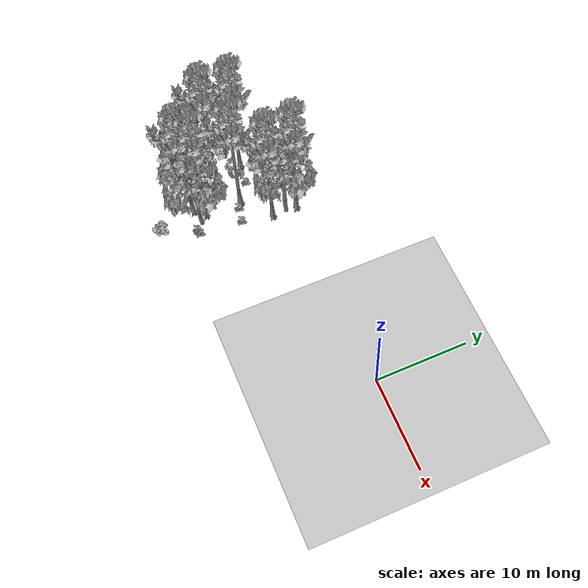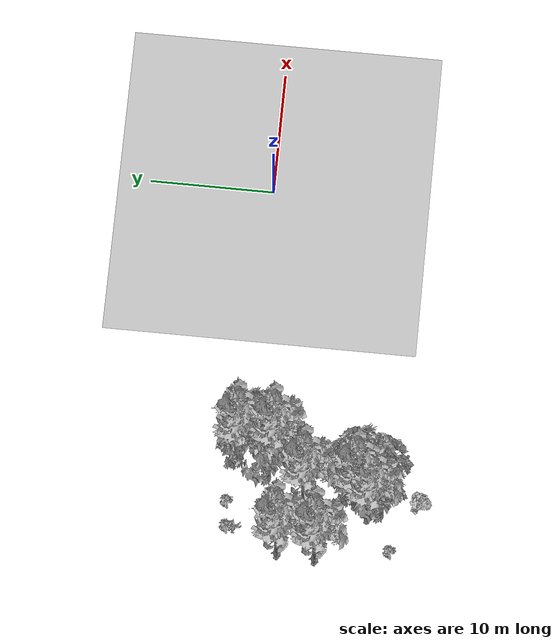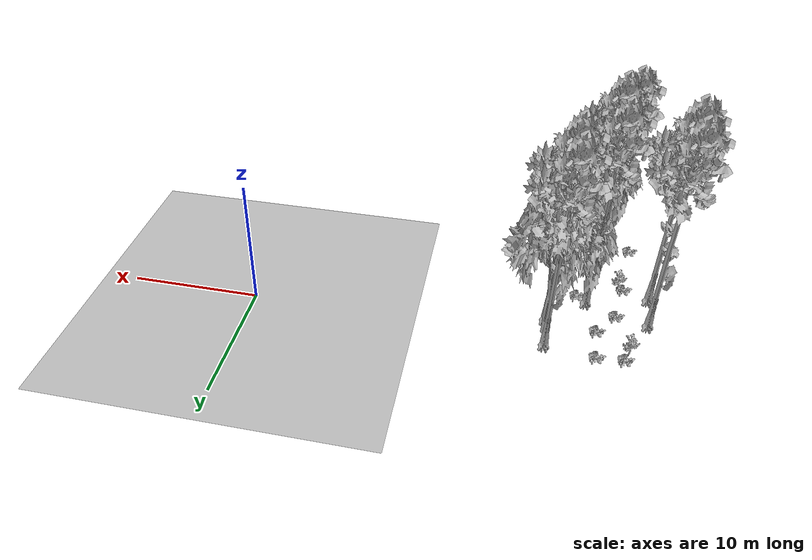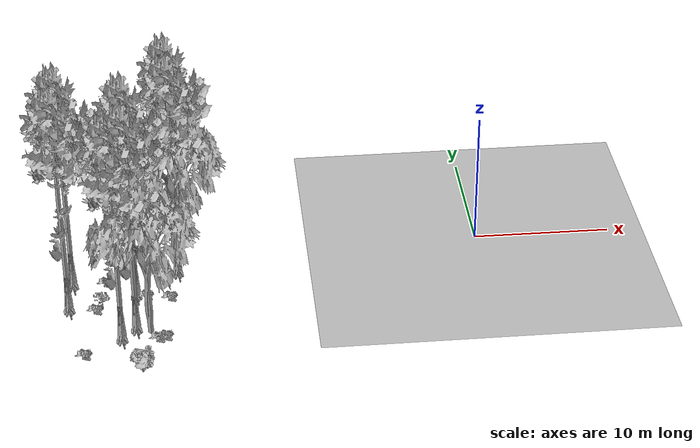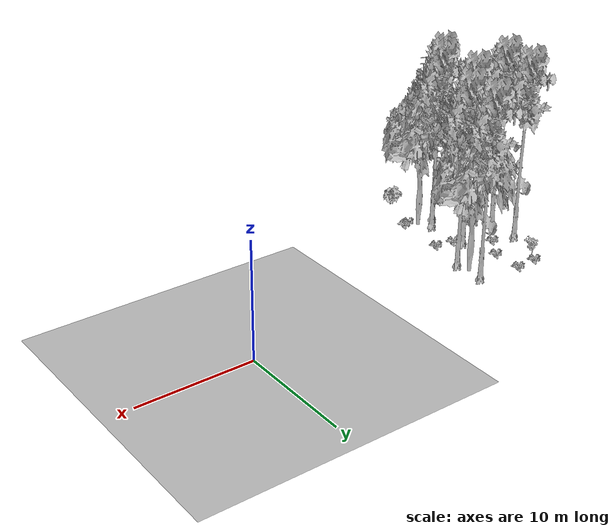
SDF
<sdf version="1.7">
 <world name="default">
  <model name="ground_plane">
   <static>1</static>
   <link name="link">
    <collision name="collision">
     <pose>-50 0 0 0 -0 0</pose>
     <geometry><plane><normal>0 0 1</normal><size>80 80</size></plane></geometry>
     <surface><contact><ode><min_depth>0.01</min_depth><max_vel>0</max_vel></ode></contact></surface>
    </collision>
    <visual name="grass">
     <cast_shadows>0</cast_shadows>
     <geometry>
      <mesh>
       <scale>0.46714285714285714 0.46714285714285714 0.1</scale>
       <uri>file://grass_plane/meshes/grass_plane.dae</uri>
      </mesh>
     </geometry>
    </visual>
   </link>
  </model>
  <model name="Tree 175">
   <static>1</static>
   <pose>-22.14377556902386 -2.196716319462986 0 1.57079 -0 0</pose>
   <link name="link">
    <collision name="collision">
     <geometry><mesh><scale>3.5 5 3.5</scale><uri>model://tree_9/meshes/tree_9.obj</uri></mesh></geometry>
    </collision>
    <visual name="visual">
     <geometry><mesh><scale>3.5 5 3.5</scale><uri>model://tree_9/meshes/tree_9.obj</uri></mesh></geometry>
    </visual>
   </link>
  </model>
  <model name="Tree 253">
   <static>1</static>
   <pose>-29.704213460453516 -3.0925580899911864 0 1.57079 -0 0</pose>
   <link name="link">
    <collision name="collision">
     <geometry><mesh><scale>3.5 5 3.5</scale><uri>model://tree_9/meshes/tree_9.obj</uri></mesh></geometry>
    </collision>
    <visual name="visual">
     <geometry><mesh><scale>3.5 5 3.5</scale><uri>model://tree_9/meshes/tree_9.obj</uri></mesh></geometry>
    </visual>
   </link>
  </model>
  <model name="Tree 279">
   <static>1</static>
   <pose>-26.165747735822038 -9.931149417683507 0 1.57079 -0 0</pose>
   <link name="link">
    <collision name="collision">
     <geometry><mesh><scale>3.5 5 3.5</scale><uri>model://tree_9/meshes/tree_9.obj</uri></mesh></geometry>
    </collision>
    <visual name="visual">
     <geometry><mesh><scale>3.5 5 3.5</scale><uri>model://tree_9/meshes/tree_9.obj</uri></mesh></geometry>
    </visual>
   </link>
  </model>
  <model name="Tree 377">
   <static>1</static>
   <pose>-25.168516573281693 -8.83817283691144 0 1.57079 -0 0</pose>
   <link name="link">
    <collision name="collision">
     <geometry><mesh><scale>3.5 5 3.5</scale><uri>model://tree_9/meshes/tree_9.obj</uri></mesh></geometry>
    </collision>
    <visual name="visual">
     <geometry><mesh><scale>3.5 5 3.5</scale><uri>model://tree_9/meshes/tree_9.obj</uri></mesh></geometry>
    </visual>
   </link>
  </model>
  <model name="Tree 389">
   <static>1</static>
   <pose>-22.13651692196363 -0.666855114138329 0 1.57079 -0 0</pose>
   <link name="link">
    <collision name="collision">
     <geometry><mesh><scale>3.5 5 3.5</scale><uri>model://tree_2/meshes/tree_2.obj</uri></mesh></geometry>
    </collision>
    <visual name="visual">
     <geometry><mesh><scale>3.5 5 3.5</scale><uri>model://tree_2/meshes/tree_2.obj</uri></mesh></geometry>
    </visual>
   </link>
  </model>
  <model name="Tree 413">
   <static>1</static>
   <pose>-29.901503091278993 -6.092586819807373 0 1.57079 -0 0</pose>
   <link name="link">
    <collision name="collision">
     <geometry><mesh><scale>3.5 5 3.5</scale><uri>model://tree_9/meshes/tree_9.obj</uri></mesh></geometry>
    </collision>
    <visual name="visual">
     <geometry><mesh><scale>3.5 5 3.5</scale><uri>model://tree_9/meshes/tree_9.obj</uri></mesh></geometry>
    </visual>
   </link>
  </model>
  <model name="Tree 416">
   <static>1</static>
   <pose>-22.161581894472622 0.5874109919333463 0 1.57079 -0 0</pose>
   <link name="link">
    <collision name="collision">
     <geometry><mesh><scale>3.5 5 3.5</scale><uri>model://tree_9/meshes/tree_9.obj</uri></mesh></geometry>
    </collision>
    <visual name="visual">
     <geometry><mesh><scale>3.5 5 3.5</scale><uri>model://tree_9/meshes/tree_9.obj</uri></mesh></geometry>
    </visual>
   </link>
  </model>
  <model name="Tree 484">
   <static>1</static>
   <pose>-25.163595856143978 -4.797728800970553 0 1.57079 -0 0</pose>
   <link name="link">
    <collision name="collision">
     <geometry><mesh><scale>3.5 5 3.5</scale><uri>model://tree_9/meshes/tree_9.obj</uri></mesh></geometry>
    </collision>
    <visual name="visual">
     <geometry><mesh><scale>3.5 5 3.5</scale><uri>model://tree_9/meshes/tree_9.obj</uri></mesh></geometry>
    </visual>
   </link>
  </model>
  <model name="Tree 587">
   <static>1</static>
   <pose>-24.263681154420247 -9.596818057150802 0 1.57079 -0 0</pose>
   <link name="link">
    <collision name="collision">
     <geometry><mesh><scale>3.5 5 3.5</scale><uri>model://tree_2/meshes/tree_2.obj</uri></mesh></geometry>
    </collision>
    <visual name="visual">
     <geometry><mesh><scale>3.5 5 3.5</scale><uri>model://tree_2/meshes/tree_2.obj</uri></mesh></geometry>
    </visual>
   </link>
  </model>
  <model name="Bush 63">
   <static>1</static>
   <pose>-27.504928349734538 -6.572587120902249 0 1.57079 -0 0</pose>
   <link name="link">
    <collision name="collision">
     <geometry><mesh><scale>2 2 2</scale><uri>model://bush_5/meshes/bush_5.obj</uri></mesh></geometry>
     <surface><contact><collide_without_contact>false</collide_without_contact></contact></surface>
    </collision>
    <visual name="visual">
     <geometry><mesh><scale>2 2 2</scale><uri>model://bush_5/meshes/bush_5.obj</uri></mesh></geometry>
    </visual>
   </link>
  </model>
  <model name="Bush 88">
   <static>1</static>
   <pose>-22.781137485209115 -5.5859551459631405 0 1.57079 -0 0</pose>
   <link name="link">
    <collision name="collision">
     <geometry><mesh><scale>2 2 2</scale><uri>model://bush_2/meshes/bush_2.obj</uri></mesh></geometry>
     <surface><contact><collide_without_contact>false</collide_without_contact></contact></surface>
    </collision>
    <visual name="visual">
     <geometry><mesh><scale>2 2 2</scale><uri>model://bush_2/meshes/bush_2.obj</uri></mesh></geometry>
    </visual>
   </link>
  </model>
  <model name="Bush 228">
   <static>1</static>
   <pose>-23.162442502678307 -10.236550021894033 0 1.57079 -0 0</pose>
   <link name="link">
    <collision name="collision">
     <geometry><mesh><scale>2 2 2</scale><uri>model://bush_2/meshes/bush_2.obj</uri></mesh></geometry>
     <surface><contact><collide_without_contact>false</collide_without_contact></contact></surface>
    </collision>
    <visual name="visual">
     <geometry><mesh><scale>2 2 2</scale><uri>model://bush_2/meshes/bush_2.obj</uri></mesh></geometry>
    </visual>
   </link>
  </model>
  <model name="Bush 345">
   <static>1</static>
   <pose>-25.85585743979414 1.2882380821009036 0 1.57079 -0 0</pose>
   <link name="link">
    <collision name="collision">
     <geometry><mesh><scale>2 2 2</scale><uri>model://bush_2/meshes/bush_2.obj</uri></mesh></geometry>
     <surface><contact><collide_without_contact>false</collide_without_contact></contact></surface>
    </collision>
    <visual name="visual">
     <geometry><mesh><scale>2 2 2</scale><uri>model://bush_2/meshes/bush_2.obj</uri></mesh></geometry>
    </visual>
   </link>
  </model>
  <model name="Bush 388">
   <static>1</static>
   <pose>-24.462847754649474 -5.281343107809917 0 1.57079 -0 0</pose>
   <link name="link">
    <collision name="collision">
     <geometry><mesh><scale>2 2 2</scale><uri>model://bush_2/meshes/bush_2.obj</uri></mesh></geometry>
     <surface><contact><collide_without_contact>false</collide_without_contact></contact></surface>
    </collision>
    <visual name="visual">
     <geometry><mesh><scale>2 2 2</scale><uri>model://bush_2/meshes/bush_2.obj</uri></mesh></geometry>
    </visual>
   </link>
  </model>
  <model name="Bush 409">
   <static>1</static>
   <pose>-24.735542932114093 -14.098397676103112 0 1.57079 -0 0</pose>
   <link name="link">
    <collision name="collision">
     <geometry><mesh><scale>2 2 2</scale><uri>model://bush_1/meshes/bush_1.obj</uri></mesh></geometry>
     <surface><contact><collide_without_contact>false</collide_without_contact></contact></surface>
    </collision>
    <visual name="visual">
     <geometry><mesh><scale>2 2 2</scale><uri>model://bush_1/meshes/bush_1.obj</uri></mesh></geometry>
    </visual>
   </link>
  </model>
  <model name="Bush 437">
   <static>1</static>
   <pose>-28.04294345470512 0.6635606379032879 0 1.57079 -0 0</pose>
   <link name="link">
    <collision name="collision">
     <geometry><mesh><scale>2 2 2</scale><uri>model://bush_5/meshes/bush_5.obj</uri></mesh></geometry>
     <surface><contact><collide_without_contact>false</collide_without_contact></contact></surface>
    </collision>
    <visual name="visual">
     <geometry><mesh><scale>2 2 2</scale><uri>model://bush_5/meshes/bush_5.obj</uri></mesh></geometry>
    </visual>
   </link>
  </model>
  <model name="Bush 467">
   <static>1</static>
   <pose>-28.036000671369212 -6.687569286287236 0 1.57079 -0 0</pose>
   <link name="link">
    <collision name="collision">
     <geometry><mesh><scale>2 2 2</scale><uri>model://bush_2/meshes/bush_2.obj</uri></mesh></geometry>
     <surface><contact><collide_without_contact>false</collide_without_contact></contact></surface>
    </collision>
    <visual name="visual">
     <geometry><mesh><scale>2 2 2</scale><uri>model://bush_2/meshes/bush_2.obj</uri></mesh></geometry>
    </visual>
   </link>
  </model>
  <model name="Bush 533">
   <static>1</static>
   <pose>-23.679233940882206 -10.399976211848756 0 1.57079 -0 0</pose>
   <link name="link">
    <collision name="collision">
     <geometry><mesh><scale>2 2 2</scale><uri>model://bush_2/meshes/bush_2.obj</uri></mesh></geometry>
     <surface><contact><collide_without_contact>false</collide_without_contact></contact></surface>
    </collision>
    <visual name="visual">
     <geometry><mesh><scale>2 2 2</scale><uri>model://bush_2/meshes/bush_2.obj</uri></mesh></geometry>
    </visual>
   </link>
  </model>
  <model name="Bush 572">
   <static>1</static>
   <pose>-28.731409321407547 -11.913325008921163 0 1.57079 -0 0</pose>
   <link name="link">
    <collision name="collision">
     <geometry><mesh><scale>2 2 2</scale><uri>model://bush_2/meshes/bush_2.obj</uri></mesh></geometry>
     <surface><contact><collide_without_contact>false</collide_without_contact></contact></surface>
    </collision>
    <visual name="visual">
     <geometry><mesh><scale>2 2 2</scale><uri>model://bush_2/meshes/bush_2.obj</uri></mesh></geometry>
    </visual>
   </link>
  </model>
  <model name="Bush 583">
   <static>1</static>
   <pose>-27.85435418515529 1.158319355436447 0 1.57079 -0 0</pose>
   <link name="link">
    <collision name="collision">
     <geometry><mesh><scale>2 2 2</scale><uri>model://bush_2/meshes/bush_2.obj</uri></mesh></geometry>
     <surface><contact><collide_without_contact>false</collide_without_contact></contact></surface>
    </collision>
    <visual name="visual">
     <geometry><mesh><scale>2 2 2</scale><uri>model://bush_2/meshes/bush_2.obj</uri></mesh></geometry>
    </visual>
   </link>
  </model>
  <model name="Bush 584">
   <static>1</static>
   <pose>-27.35164408377782 -3.3929340784792004 0 1.57079 -0 0</pose>
   <link name="link">
    <collision name="collision">
     <geometry><mesh><scale>2 2 2</scale><uri>model://bush_2/meshes/bush_2.obj</uri></mesh></geometry>
     <surface><contact><collide_without_contact>false</collide_without_contact></contact></surface>
    </collision>
    <visual name="visual">
     <geometry><mesh><scale>2 2 2</scale><uri>model://bush_2/meshes/bush_2.obj</uri></mesh></geometry>
    </visual>
   </link>
  </model>
  <model name="Bush 599">
   <static>1</static>
   <pose>-25.916709954897687 -1.451392907684422 0 1.57079 -0 0</pose>
   <link name="link">
    <collision name="collision">
     <geometry><mesh><scale>2 2 2</scale><uri>model://bush_2/meshes/bush_2.obj</uri></mesh></geometry>
     <surface><contact><collide_without_contact>false</collide_without_contact></contact></surface>
    </collision>
    <visual name="visual">
     <geometry><mesh><scale>2 2 2</scale><uri>model://bush_2/meshes/bush_2.obj</uri></mesh></geometry>
    </visual>
   </link>
  </model>
 </world>
</sdf>
